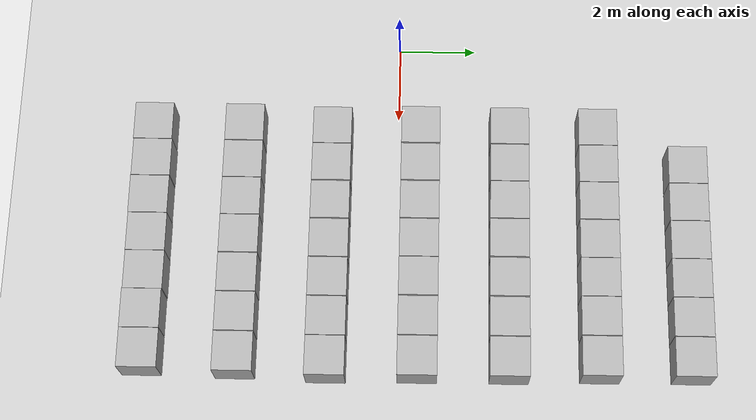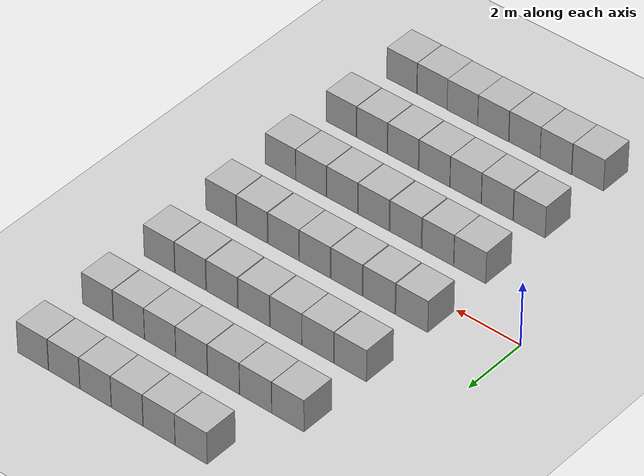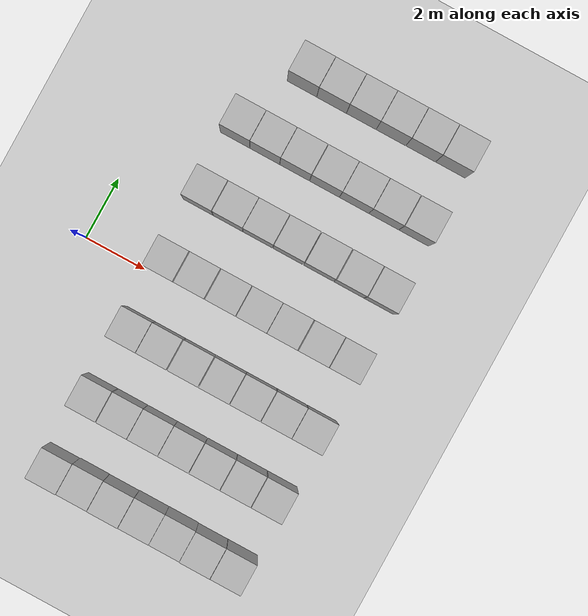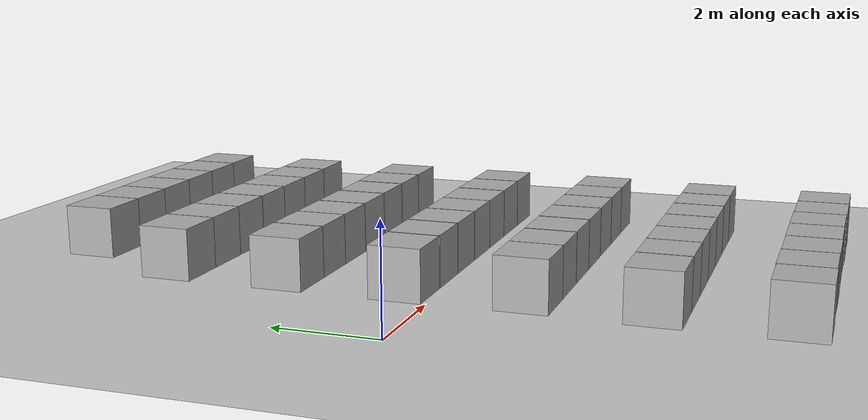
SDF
<sdf version="1.10">
 <world name="empty">
  <model name="ground_plane">
   <static>true</static>
   <link name="link">
    <collision name="collision">
     <geometry><plane><normal>0 0 1</normal><size>100 100</size></plane></geometry>
    </collision>
    <visual name="visual">
     <geometry><plane><normal>0 0 1</normal><size>100 100</size></plane></geometry>
     <material>
      <ambient>0.800000012 0.800000012 0.800000012 1</ambient>
      <diffuse>0.800000012 0.800000012 0.800000012 1</diffuse>
      <specular>0.800000012 0.800000012 0.800000012 1</specular>
     </material>
    </visual>
    <inertial>
     <mass>1</mass>
     <inertia><ixx>1</ixx><ixy>0</ixy><ixz>0</ixz><iyy>1</iyy><iyz>0</iyz><izz>1</izz></inertia>
    </inertial>
   </link>
  </model>
  <model name="box_0">
   <pose>2.5 2.8999999999999999 0.49999999990199806 6.1203827244439096e-21 -3.3876359505899643e-21 1.6466037992492553e-22</pose>
   <link name="box_link">
    <inertial>
     <inertia><ixx>0.16666</ixx><ixy>0</ixy><ixz>0</ixz><iyy>0.16666</iyy><iyz>0</iyz><izz>0.16666</izz></inertia>
     <mass>1</mass>
    </inertial>
    <collision name="box_collision"><geometry><box><size>1 1 1</size></box></geometry></collision>
    <visual name="box_visual">
     <geometry><box><size>1 1 1</size></box></geometry>
     <material>
      <ambient>0.300000012 0.300000012 0.300000012 1</ambient>
      <diffuse>0.699999988 0.699999988 0.699999988 1</diffuse>
      <specular>1 1 1 1</specular>
     </material>
    </visual>
   </link>
   <static>false</static>
  </model>
  <model name="box_1">
   <pose>2.5 0.58999999999999997 0.49999999990199806 8.7066809390667723e-22 -2.1285260495278108e-21 1.1545711030765614e-22</pose>
   <link name="box_link">
    <inertial>
     <inertia><ixx>0.16666</ixx><ixy>0</ixy><ixz>0</ixz><iyy>0.16666</iyy><iyz>0</iyz><izz>0.16666</izz></inertia>
     <mass>1</mass>
    </inertial>
    <collision name="box_collision"><geometry><box><size>1 1 1</size></box></geometry></collision>
    <visual name="box_visual">
     <geometry><box><size>1 1 1</size></box></geometry>
     <material>
      <ambient>0.300000012 0.300000012 0.300000012 1</ambient>
      <diffuse>0.699999988 0.699999988 0.699999988 1</diffuse>
      <specular>1 1 1 1</specular>
     </material>
    </visual>
   </link>
   <static>false</static>
  </model>
  <model name="box_2">
   <pose>3.52 2.8999999999999999 0.49999999990199806 -4.8768695265223027e-21 5.8225065261525486e-22 -7.5141929730115795e-25</pose>
   <link name="box_link">
    <inertial>
     <inertia><ixx>0.16666</ixx><ixy>0</ixy><ixz>0</ixz><iyy>0.16666</iyy><iyz>0</iyz><izz>0.16666</izz></inertia>
     <mass>1</mass>
    </inertial>
    <collision name="box_collision"><geometry><box><size>1 1 1</size></box></geometry></collision>
    <visual name="box_visual">
     <geometry><box><size>1 1 1</size></box></geometry>
     <material>
      <ambient>0.300000012 0.300000012 0.300000012 1</ambient>
      <diffuse>0.699999988 0.699999988 0.699999988 1</diffuse>
      <specular>1 1 1 1</specular>
     </material>
    </visual>
   </link>
   <static>false</static>
  </model>
  <model name="box_2_1">
   <pose>4.5300000000000002 2.8999999999999999 0.49999999990199806 4.2898201230764065e-21 -2.725349153175945e-21 -8.5990281335853726e-23</pose>
   <link name="box_link">
    <inertial>
     <inertia><ixx>0.16666</ixx><ixy>0</ixy><ixz>0</ixz><iyy>0.16666</iyy><iyz>0</iyz><izz>0.16666</izz></inertia>
     <mass>1</mass>
    </inertial>
    <collision name="box_collision"><geometry><box><size>1 1 1</size></box></geometry></collision>
    <visual name="box_visual">
     <geometry><box><size>1 1 1</size></box></geometry>
     <material>
      <ambient>0.300000012 0.300000012 0.300000012 1</ambient>
      <diffuse>0.699999988 0.699999988 0.699999988 1</diffuse>
      <specular>1 1 1 1</specular>
     </material>
    </visual>
   </link>
   <static>false</static>
  </model>
  <model name="box_3">
   <pose>5.5499999999999998 2.8999999999999999 0.49999999990199806 5.2887159057370552e-21 -3.6750628121331441e-21 -3.6849575540852575e-22</pose>
   <link name="box_link">
    <inertial>
     <inertia><ixx>0.16666</ixx><ixy>0</ixy><ixz>0</ixz><iyy>0.16666</iyy><iyz>0</iyz><izz>0.16666</izz></inertia>
     <mass>1</mass>
    </inertial>
    <collision name="box_collision"><geometry><box><size>1 1 1</size></box></geometry></collision>
    <visual name="box_visual">
     <geometry><box><size>1 1 1</size></box></geometry>
     <material>
      <ambient>0.300000012 0.300000012 0.300000012 1</ambient>
      <diffuse>0.699999988 0.699999988 0.699999988 1</diffuse>
      <specular>1 1 1 1</specular>
     </material>
    </visual>
   </link>
   <static>false</static>
  </model>
  <model name="box_4">
   <pose>6.5800000000000001 2.8999999999999999 0.49999999990199806 -2.4660929546317553e-21 -9.2821509608650037e-21 -8.2239956414060735e-22</pose>
   <link name="box_link">
    <inertial>
     <inertia><ixx>0.16666</ixx><ixy>0</ixy><ixz>0</ixz><iyy>0.16666</iyy><iyz>0</iyz><izz>0.16666</izz></inertia>
     <mass>1</mass>
    </inertial>
    <collision name="box_collision"><geometry><box><size>1 1 1</size></box></geometry></collision>
    <visual name="box_visual">
     <geometry><box><size>1 1 1</size></box></geometry>
     <material>
      <ambient>0.300000012 0.300000012 0.300000012 1</ambient>
      <diffuse>0.699999988 0.699999988 0.699999988 1</diffuse>
      <specular>1 1 1 1</specular>
     </material>
    </visual>
   </link>
   <static>false</static>
  </model>
  <model name="box_5">
   <pose>7.6100000000000003 2.8999999999999999 0.49999999990199806 2.6876898212229476e-22 -1.2926105225332566e-21 -3.0142882185984917e-22</pose>
   <link name="box_link">
    <inertial>
     <inertia><ixx>0.16666</ixx><ixy>0</ixy><ixz>0</ixz><iyy>0.16666</iyy><iyz>0</iyz><izz>0.16666</izz></inertia>
     <mass>1</mass>
    </inertial>
    <collision name="box_collision"><geometry><box><size>1 1 1</size></box></geometry></collision>
    <visual name="box_visual">
     <geometry><box><size>1 1 1</size></box></geometry>
     <material>
      <ambient>0.300000012 0.300000012 0.300000012 1</ambient>
      <diffuse>0.699999988 0.699999988 0.699999988 1</diffuse>
      <specular>1 1 1 1</specular>
     </material>
    </visual>
   </link>
   <static>false</static>
  </model>
  <model name="box_6">
   <pose>8.6300000000000008 2.8999999999999999 0.49999999990199806 1.9043130121824857e-21 8.8559634418370129e-21 -4.3486632422214666e-23</pose>
   <link name="box_link">
    <inertial>
     <inertia><ixx>0.16666</ixx><ixy>0</ixy><ixz>0</ixz><iyy>0.16666</iyy><iyz>0</iyz><izz>0.16666</izz></inertia>
     <mass>1</mass>
    </inertial>
    <collision name="box_collision"><geometry><box><size>1 1 1</size></box></geometry></collision>
    <visual name="box_visual">
     <geometry><box><size>1 1 1</size></box></geometry>
     <material>
      <ambient>0.300000012 0.300000012 0.300000012 1</ambient>
      <diffuse>0.699999988 0.699999988 0.699999988 1</diffuse>
      <specular>1 1 1 1</specular>
     </material>
    </visual>
   </link>
   <static>false</static>
  </model>
  <model name="box_7">
   <pose>3.5299999999999998 0.58999999999999986 0.49999999990199806 -9.9876155932578515e-22 -3.3279681376680838e-21 1.0376628418611865e-22</pose>
   <link name="box_link">
    <inertial>
     <inertia><ixx>0.16666</ixx><ixy>0</ixy><ixz>0</ixz><iyy>0.16666</iyy><iyz>0</iyz><izz>0.16666</izz></inertia>
     <mass>1</mass>
    </inertial>
    <collision name="box_collision"><geometry><box><size>1 1 1</size></box></geometry></collision>
    <visual name="box_visual">
     <geometry><box><size>1 1 1</size></box></geometry>
     <material>
      <ambient>0.300000012 0.300000012 0.300000012 1</ambient>
      <diffuse>0.699999988 0.699999988 0.699999988 1</diffuse>
      <specular>1 1 1 1</specular>
     </material>
    </visual>
   </link>
   <static>false</static>
  </model>
  <model name="box_8">
   <pose>4.5599999999999996 0.58999999999999986 0.49999999990199806 8.0483898771128715e-22 -1.9664387365039291e-21 2.629122359092698e-22</pose>
   <link name="box_link">
    <inertial>
     <inertia><ixx>0.16666</ixx><ixy>0</ixy><ixz>0</ixz><iyy>0.16666</iyy><iyz>0</iyz><izz>0.16666</izz></inertia>
     <mass>1</mass>
    </inertial>
    <collision name="box_collision"><geometry><box><size>1 1 1</size></box></geometry></collision>
    <visual name="box_visual">
     <geometry><box><size>1 1 1</size></box></geometry>
     <material>
      <ambient>0.300000012 0.300000012 0.300000012 1</ambient>
      <diffuse>0.699999988 0.699999988 0.699999988 1</diffuse>
      <specular>1 1 1 1</specular>
     </material>
    </visual>
   </link>
   <static>false</static>
  </model>
  <model name="box_9">
   <pose>5.5800000000000001 0.59000000000000008 0.49999999990199806 -3.7574526127707067e-21 -2.7620760771008262e-21 -5.0334515553601907e-22</pose>
   <link name="box_link">
    <inertial>
     <inertia><ixx>0.16666</ixx><ixy>0</ixy><ixz>0</ixz><iyy>0.16666</iyy><iyz>0</iyz><izz>0.16666</izz></inertia>
     <mass>1</mass>
    </inertial>
    <collision name="box_collision"><geometry><box><size>1 1 1</size></box></geometry></collision>
    <visual name="box_visual">
     <geometry><box><size>1 1 1</size></box></geometry>
     <material>
      <ambient>0.300000012 0.300000012 0.300000012 1</ambient>
      <diffuse>0.699999988 0.699999988 0.699999988 1</diffuse>
      <specular>1 1 1 1</specular>
     </material>
    </visual>
   </link>
   <static>false</static>
  </model>
  <model name="box_10">
   <pose>6.5899999999999999 0.58999999999999986 0.49999999990199806 1.8321338117819254e-21 -8.3511235812931385e-22 -1.072067985728647e-22</pose>
   <link name="box_link">
    <inertial>
     <inertia><ixx>0.16666</ixx><ixy>0</ixy><ixz>0</ixz><iyy>0.16666</iyy><iyz>0</iyz><izz>0.16666</izz></inertia>
     <mass>1</mass>
    </inertial>
    <collision name="box_collision"><geometry><box><size>1 1 1</size></box></geometry></collision>
    <visual name="box_visual">
     <geometry><box><size>1 1 1</size></box></geometry>
     <material>
      <ambient>0.300000012 0.300000012 0.300000012 1</ambient>
      <diffuse>0.699999988 0.699999988 0.699999988 1</diffuse>
      <specular>1 1 1 1</specular>
     </material>
    </visual>
   </link>
   <static>false</static>
  </model>
  <model name="box_11">
   <pose>7.6200000000000001 0.58999999999999986 0.49999999990199806 -9.8022300570000345e-22 -1.2140919249779047e-21 -6.2576101818199715e-22</pose>
   <link name="box_link">
    <inertial>
     <inertia><ixx>0.16666</ixx><ixy>0</ixy><ixz>0</ixz><iyy>0.16666</iyy><iyz>0</iyz><izz>0.16666</izz></inertia>
     <mass>1</mass>
    </inertial>
    <collision name="box_collision"><geometry><box><size>1 1 1</size></box></geometry></collision>
    <visual name="box_visual">
     <geometry><box><size>1 1 1</size></box></geometry>
     <material>
      <ambient>0.300000012 0.300000012 0.300000012 1</ambient>
      <diffuse>0.699999988 0.699999988 0.699999988 1</diffuse>
      <specular>1 1 1 1</specular>
     </material>
    </visual>
   </link>
   <static>false</static>
  </model>
  <model name="box_12">
   <pose>8.6400000000000006 0.58999999999999986 0.49999999990199806 1.1685815462847036e-21 3.8251662251648546e-22 1.9598060917783797e-23</pose>
   <link name="box_link">
    <inertial>
     <inertia><ixx>0.16666</ixx><ixy>0</ixy><ixz>0</ixz><iyy>0.16666</iyy><iyz>0</iyz><izz>0.16666</izz></inertia>
     <mass>1</mass>
    </inertial>
    <collision name="box_collision"><geometry><box><size>1 1 1</size></box></geometry></collision>
    <visual name="box_visual">
     <geometry><box><size>1 1 1</size></box></geometry>
     <material>
      <ambient>0.300000012 0.300000012 0.300000012 1</ambient>
      <diffuse>0.699999988 0.699999988 0.699999988 1</diffuse>
      <specular>1 1 1 1</specular>
     </material>
    </visual>
   </link>
   <static>false</static>
  </model>
  <model name="box_13">
   <pose>2.5499999999999998 -1.71 0.5 1.6937504338995532e-43 0 0</pose>
   <link name="box_link">
    <inertial>
     <inertia><ixx>0.16666</ixx><ixy>0</ixy><ixz>0</ixz><iyy>0.16666</iyy><iyz>0</iyz><izz>0.16666</izz></inertia>
     <mass>1</mass>
    </inertial>
    <collision name="box_collision"><geometry><box><size>1 1 1</size></box></geometry></collision>
    <visual name="box_visual">
     <geometry><box><size>1 1 1</size></box></geometry>
     <material>
      <ambient>0.300000012 0.300000012 0.300000012 1</ambient>
      <diffuse>0.699999988 0.699999988 0.699999988 1</diffuse>
      <specular>1 1 1 1</specular>
     </material>
    </visual>
   </link>
   <static>false</static>
  </model>
  <model name="box_14">
   <pose>3.5600000000000001 -1.71 0.5 1.6937504338995532e-43 0 0</pose>
   <link name="box_link">
    <inertial>
     <inertia><ixx>0.16666</ixx><ixy>0</ixy><ixz>0</ixz><iyy>0.16666</iyy><iyz>0</iyz><izz>0.16666</izz></inertia>
     <mass>1</mass>
    </inertial>
    <collision name="box_collision"><geometry><box><size>1 1 1</size></box></geometry></collision>
    <visual name="box_visual">
     <geometry><box><size>1 1 1</size></box></geometry>
     <material>
      <ambient>0.300000012 0.300000012 0.300000012 1</ambient>
      <diffuse>0.699999988 0.699999988 0.699999988 1</diffuse>
      <specular>1 1 1 1</specular>
     </material>
    </visual>
   </link>
   <static>false</static>
  </model>
  <model name="box_15">
   <pose>4.5899999999999999 -1.71 0.5 1.6937504338995532e-43 0 0</pose>
   <link name="box_link">
    <inertial>
     <inertia><ixx>0.16666</ixx><ixy>0</ixy><ixz>0</ixz><iyy>0.16666</iyy><iyz>0</iyz><izz>0.16666</izz></inertia>
     <mass>1</mass>
    </inertial>
    <collision name="box_collision"><geometry><box><size>1 1 1</size></box></geometry></collision>
    <visual name="box_visual">
     <geometry><box><size>1 1 1</size></box></geometry>
     <material>
      <ambient>0.300000012 0.300000012 0.300000012 1</ambient>
      <diffuse>0.699999988 0.699999988 0.699999988 1</diffuse>
      <specular>1 1 1 1</specular>
     </material>
    </visual>
   </link>
   <static>false</static>
  </model>
  <model name="box_16">
   <pose>5.6200000000000001 -1.71 0.5 1.6937504338995532e-43 0 0</pose>
   <link name="box_link">
    <inertial>
     <inertia><ixx>0.16666</ixx><ixy>0</ixy><ixz>0</ixz><iyy>0.16666</iyy><iyz>0</iyz><izz>0.16666</izz></inertia>
     <mass>1</mass>
    </inertial>
    <collision name="box_collision"><geometry><box><size>1 1 1</size></box></geometry></collision>
    <visual name="box_visual">
     <geometry><box><size>1 1 1</size></box></geometry>
     <material>
      <ambient>0.300000012 0.300000012 0.300000012 1</ambient>
      <diffuse>0.699999988 0.699999988 0.699999988 1</diffuse>
      <specular>1 1 1 1</specular>
     </material>
    </visual>
   </link>
   <static>false</static>
  </model>
  <model name="box_17">
   <pose>6.6399999999999997 -1.71 0.5 1.6937504338995532e-43 0 0</pose>
   <link name="box_link">
    <inertial>
     <inertia><ixx>0.16666</ixx><ixy>0</ixy><ixz>0</ixz><iyy>0.16666</iyy><iyz>0</iyz><izz>0.16666</izz></inertia>
     <mass>1</mass>
    </inertial>
    <collision name="box_collision"><geometry><box><size>1 1 1</size></box></geometry></collision>
    <visual name="box_visual">
     <geometry><box><size>1 1 1</size></box></geometry>
     <material>
      <ambient>0.300000012 0.300000012 0.300000012 1</ambient>
      <diffuse>0.699999988 0.699999988 0.699999988 1</diffuse>
      <specular>1 1 1 1</specular>
     </material>
    </visual>
   </link>
   <static>false</static>
  </model>
  <model name="box_18">
   <pose>7.6600000000000001 -1.71 0.5 3.1892209020670102e-43 0 0</pose>
   <link name="box_link">
    <inertial>
     <inertia><ixx>0.16666</ixx><ixy>0</ixy><ixz>0</ixz><iyy>0.16666</iyy><iyz>0</iyz><izz>0.16666</izz></inertia>
     <mass>1</mass>
    </inertial>
    <collision name="box_collision"><geometry><box><size>1 1 1</size></box></geometry></collision>
    <visual name="box_visual">
     <geometry><box><size>1 1 1</size></box></geometry>
     <material>
      <ambient>0.300000012 0.300000012 0.300000012 1</ambient>
      <diffuse>0.699999988 0.699999988 0.699999988 1</diffuse>
      <specular>1 1 1 1</specular>
     </material>
    </visual>
   </link>
   <static>false</static>
  </model>
  <model name="box_19">
   <pose>8.6699999999999999 -1.71 0.5 1.6937504338995532e-43 0 0</pose>
   <link name="box_link">
    <inertial>
     <inertia><ixx>0.16666</ixx><ixy>0</ixy><ixz>0</ixz><iyy>0.16666</iyy><iyz>0</iyz><izz>0.16666</izz></inertia>
     <mass>1</mass>
    </inertial>
    <collision name="box_collision"><geometry><box><size>1 1 1</size></box></geometry></collision>
    <visual name="box_visual">
     <geometry><box><size>1 1 1</size></box></geometry>
     <material>
      <ambient>0.300000012 0.300000012 0.300000012 1</ambient>
      <diffuse>0.699999988 0.699999988 0.699999988 1</diffuse>
      <specular>1 1 1 1</specular>
     </material>
    </visual>
   </link>
   <static>false</static>
  </model>
  <model name="box_20">
   <pose>2.5 -4 0.5 -4.0097937125292166e-44 0 0</pose>
   <link name="box_link">
    <inertial>
     <inertia><ixx>0.16666</ixx><ixy>0</ixy><ixz>0</ixz><iyy>0.16666</iyy><iyz>0</iyz><izz>0.16666</izz></inertia>
     <mass>1</mass>
    </inertial>
    <collision name="box_collision"><geometry><box><size>1 1 1</size></box></geometry></collision>
    <visual name="box_visual">
     <geometry><box><size>1 1 1</size></box></geometry>
     <material>
      <ambient>0.300000012 0.300000012 0.300000012 1</ambient>
      <diffuse>0.699999988 0.699999988 0.699999988 1</diffuse>
      <specular>1 1 1 1</specular>
     </material>
    </visual>
   </link>
   <static>false</static>
  </model>
  <model name="box_21">
   <pose>3.52 -4 0.5 1.6937504338995532e-43 0 0</pose>
   <link name="box_link">
    <inertial>
     <inertia><ixx>0.16666</ixx><ixy>0</ixy><ixz>0</ixz><iyy>0.16666</iyy><iyz>0</iyz><izz>0.16666</izz></inertia>
     <mass>1</mass>
    </inertial>
    <collision name="box_collision"><geometry><box><size>1 1 1</size></box></geometry></collision>
    <visual name="box_visual">
     <geometry><box><size>1 1 1</size></box></geometry>
     <material>
      <ambient>0.300000012 0.300000012 0.300000012 1</ambient>
      <diffuse>0.699999988 0.699999988 0.699999988 1</diffuse>
      <specular>1 1 1 1</specular>
     </material>
    </visual>
   </link>
   <static>false</static>
  </model>
  <model name="box_22">
   <pose>4.5300000000000002 -4 0.5 1.6937504338995532e-43 0 0</pose>
   <link name="box_link">
    <inertial>
     <inertia><ixx>0.16666</ixx><ixy>0</ixy><ixz>0</ixz><iyy>0.16666</iyy><iyz>0</iyz><izz>0.16666</izz></inertia>
     <mass>1</mass>
    </inertial>
    <collision name="box_collision"><geometry><box><size>1 1 1</size></box></geometry></collision>
    <visual name="box_visual">
     <geometry><box><size>1 1 1</size></box></geometry>
     <material>
      <ambient>0.300000012 0.300000012 0.300000012 1</ambient>
      <diffuse>0.699999988 0.699999988 0.699999988 1</diffuse>
      <specular>1 1 1 1</specular>
     </material>
    </visual>
   </link>
   <static>false</static>
  </model>
  <model name="box_23">
   <pose>5.54 -4 0.5 -4.0097937125292166e-44 0 0</pose>
   <link name="box_link">
    <inertial>
     <inertia><ixx>0.16666</ixx><ixy>0</ixy><ixz>0</ixz><iyy>0.16666</iyy><iyz>0</iyz><izz>0.16666</izz></inertia>
     <mass>1</mass>
    </inertial>
    <collision name="box_collision"><geometry><box><size>1 1 1</size></box></geometry></collision>
    <visual name="box_visual">
     <geometry><box><size>1 1 1</size></box></geometry>
     <material>
      <ambient>0.300000012 0.300000012 0.300000012 1</ambient>
      <diffuse>0.699999988 0.699999988 0.699999988 1</diffuse>
      <specular>1 1 1 1</specular>
     </material>
    </visual>
   </link>
   <static>false</static>
  </model>
  <model name="box_24">
   <pose>6.5599999999999996 -4 0.5 5.5058610233241208e-44 0 0</pose>
   <link name="box_link">
    <inertial>
     <inertia><ixx>0.16666</ixx><ixy>0</ixy><ixz>0</ixz><iyy>0.16666</iyy><iyz>0</iyz><izz>0.16666</izz></inertia>
     <mass>1</mass>
    </inertial>
    <collision name="box_collision"><geometry><box><size>1 1 1</size></box></geometry></collision>
    <visual name="box_visual">
     <geometry><box><size>1 1 1</size></box></geometry>
     <material>
      <ambient>0.300000012 0.300000012 0.300000012 1</ambient>
      <diffuse>0.699999988 0.699999988 0.699999988 1</diffuse>
      <specular>1 1 1 1</specular>
     </material>
    </visual>
   </link>
   <static>false</static>
  </model>
  <model name="box_25">
   <pose>7.5800000000000001 -4 0.5 0 0 0</pose>
   <link name="box_link">
    <inertial>
     <inertia><ixx>0.16666</ixx><ixy>0</ixy><ixz>0</ixz><iyy>0.16666</iyy><iyz>0</iyz><izz>0.16666</izz></inertia>
     <mass>1</mass>
    </inertial>
    <collision name="box_collision"><geometry><box><size>1 1 1</size></box></geometry></collision>
    <visual name="box_visual">
     <geometry><box><size>1 1 1</size></box></geometry>
     <material>
      <ambient>0.300000012 0.300000012 0.300000012 1</ambient>
      <diffuse>0.699999988 0.699999988 0.699999988 1</diffuse>
      <specular>1 1 1 1</specular>
     </material>
    </visual>
   </link>
   <static>false</static>
  </model>
  <model name="box_26">
   <pose>8.5999999999999996 -4 0.5 1.6937504338995532e-43 0 0</pose>
   <link name="box_link">
    <inertial>
     <inertia><ixx>0.16666</ixx><ixy>0</ixy><ixz>0</ixz><iyy>0.16666</iyy><iyz>0</iyz><izz>0.16666</izz></inertia>
     <mass>1</mass>
    </inertial>
    <collision name="box_collision"><geometry><box><size>1 1 1</size></box></geometry></collision>
    <visual name="box_visual">
     <geometry><box><size>1 1 1</size></box></geometry>
     <material>
      <ambient>0.300000012 0.300000012 0.300000012 1</ambient>
      <diffuse>0.699999988 0.699999988 0.699999988 1</diffuse>
      <specular>1 1 1 1</specular>
     </material>
    </visual>
   </link>
   <static>false</static>
  </model>
  <model name="box_27">
   <pose>2.5 5.1900000000000004 0.49999999990199806 1.1969889062632419e-21 -2.3994643682355624e-21 -2.0346020328214015e-22</pose>
   <link name="box_link">
    <inertial>
     <inertia><ixx>0.16666</ixx><ixy>0</ixy><ixz>0</ixz><iyy>0.16666</iyy><iyz>0</iyz><izz>0.16666</izz></inertia>
     <mass>1</mass>
    </inertial>
    <collision name="box_collision"><geometry><box><size>1 1 1</size></box></geometry></collision>
    <visual name="box_visual">
     <geometry><box><size>1 1 1</size></box></geometry>
     <material>
      <ambient>0.300000012 0.300000012 0.300000012 1</ambient>
      <diffuse>0.699999988 0.699999988 0.699999988 1</diffuse>
      <specular>1 1 1 1</specular>
     </material>
    </visual>
   </link>
   <static>false</static>
  </model>
  <model name="box_28">
   <pose>3.5099999999999998 5.1900000000000004 0.49999999990199806 2.2166818924739801e-21 -3.9964851649350918e-21 -2.8454415990004946e-22</pose>
   <link name="box_link">
    <inertial>
     <inertia><ixx>0.16666</ixx><ixy>0</ixy><ixz>0</ixz><iyy>0.16666</iyy><iyz>0</iyz><izz>0.16666</izz></inertia>
     <mass>1</mass>
    </inertial>
    <collision name="box_collision"><geometry><box><size>1 1 1</size></box></geometry></collision>
    <visual name="box_visual">
     <geometry><box><size>1 1 1</size></box></geometry>
     <material>
      <ambient>0.300000012 0.300000012 0.300000012 1</ambient>
      <diffuse>0.699999988 0.699999988 0.699999988 1</diffuse>
      <specular>1 1 1 1</specular>
     </material>
    </visual>
   </link>
   <static>false</static>
  </model>
  <model name="box_29">
   <pose>4.5199999999999996 5.1900000000000004 0.49999999990199806 1.9003650826657693e-21 -3.9955080593532145e-21 -2.0083520017725128e-22</pose>
   <link name="box_link">
    <inertial>
     <inertia><ixx>0.16666</ixx><ixy>0</ixy><ixz>0</ixz><iyy>0.16666</iyy><iyz>0</iyz><izz>0.16666</izz></inertia>
     <mass>1</mass>
    </inertial>
    <collision name="box_collision"><geometry><box><size>1 1 1</size></box></geometry></collision>
    <visual name="box_visual">
     <geometry><box><size>1 1 1</size></box></geometry>
     <material>
      <ambient>0.300000012 0.300000012 0.300000012 1</ambient>
      <diffuse>0.699999988 0.699999988 0.699999988 1</diffuse>
      <specular>1 1 1 1</specular>
     </material>
    </visual>
   </link>
   <static>false</static>
  </model>
  <model name="box_30">
   <pose>5.54 5.1900000000000004 0.49999999990199806 5.9551544824185483e-22 -2.0198700582976372e-21 1.1317465050277089e-22</pose>
   <link name="box_link">
    <inertial>
     <inertia><ixx>0.16666</ixx><ixy>0</ixy><ixz>0</ixz><iyy>0.16666</iyy><iyz>0</iyz><izz>0.16666</izz></inertia>
     <mass>1</mass>
    </inertial>
    <collision name="box_collision"><geometry><box><size>1 1 1</size></box></geometry></collision>
    <visual name="box_visual">
     <geometry><box><size>1 1 1</size></box></geometry>
     <material>
      <ambient>0.300000012 0.300000012 0.300000012 1</ambient>
      <diffuse>0.699999988 0.699999988 0.699999988 1</diffuse>
      <specular>1 1 1 1</specular>
     </material>
    </visual>
   </link>
   <static>false</static>
  </model>
  <model name="box_31">
   <pose>6.5499999999999998 5.1900000000000004 0.49999999990199806 4.1068825242664722e-21 -4.6250560261045752e-21 -1.0639733848401009e-22</pose>
   <link name="box_link">
    <inertial>
     <inertia><ixx>0.16666</ixx><ixy>0</ixy><ixz>0</ixz><iyy>0.16666</iyy><iyz>0</iyz><izz>0.16666</izz></inertia>
     <mass>1</mass>
    </inertial>
    <collision name="box_collision"><geometry><box><size>1 1 1</size></box></geometry></collision>
    <visual name="box_visual">
     <geometry><box><size>1 1 1</size></box></geometry>
     <material>
      <ambient>0.300000012 0.300000012 0.300000012 1</ambient>
      <diffuse>0.699999988 0.699999988 0.699999988 1</diffuse>
      <specular>1 1 1 1</specular>
     </material>
    </visual>
   </link>
   <static>false</static>
  </model>
  <model name="box_32">
   <pose>7.5599999999999996 5.1900000000000004 0.49999999990199806 1.1033215412143612e-21 -1.9986045541170091e-21 1.2186978225147396e-22</pose>
   <link name="box_link">
    <inertial>
     <inertia><ixx>0.16666</ixx><ixy>0</ixy><ixz>0</ixz><iyy>0.16666</iyy><iyz>0</iyz><izz>0.16666</izz></inertia>
     <mass>1</mass>
    </inertial>
    <collision name="box_collision"><geometry><box><size>1 1 1</size></box></geometry></collision>
    <visual name="box_visual">
     <geometry><box><size>1 1 1</size></box></geometry>
     <material>
      <ambient>0.300000012 0.300000012 0.300000012 1</ambient>
      <diffuse>0.699999988 0.699999988 0.699999988 1</diffuse>
      <specular>1 1 1 1</specular>
     </material>
    </visual>
   </link>
   <static>false</static>
  </model>
  <model name="box_33">
   <pose>8.5800000000000001 5.1900000000000004 0.49999999990199806 1.238854400850552e-21 -4.5157620254319641e-21 -3.3539173515085679e-22</pose>
   <link name="box_link">
    <inertial>
     <inertia><ixx>0.16666</ixx><ixy>0</ixy><ixz>0</ixz><iyy>0.16666</iyy><iyz>0</iyz><izz>0.16666</izz></inertia>
     <mass>1</mass>
    </inertial>
    <collision name="box_collision"><geometry><box><size>1 1 1</size></box></geometry></collision>
    <visual name="box_visual">
     <geometry><box><size>1 1 1</size></box></geometry>
     <material>
      <ambient>0.300000012 0.300000012 0.300000012 1</ambient>
      <diffuse>0.699999988 0.699999988 0.699999988 1</diffuse>
      <specular>1 1 1 1</specular>
     </material>
    </visual>
   </link>
   <static>false</static>
  </model>
  <model name="box_35">
   <pose>3.5087299999999999 7.4916299999999998 0.49999999990199806 6.2287739151293738e-22 9.3279666454713669e-22 -3.6315533669320137e-22</pose>
   <link name="box_link">
    <inertial>
     <inertia><ixx>0.16666</ixx><ixy>0</ixy><ixz>0</ixz><iyy>0.16666</iyy><iyz>0</iyz><izz>0.16666</izz></inertia>
     <mass>1</mass>
    </inertial>
    <collision name="box_collision"><geometry><box><size>1 1 1</size></box></geometry></collision>
    <visual name="box_visual">
     <geometry><box><size>1 1 1</size></box></geometry>
     <material>
      <ambient>0.300000012 0.300000012 0.300000012 1</ambient>
      <diffuse>0.699999988 0.699999988 0.699999988 1</diffuse>
      <specular>1 1 1 1</specular>
     </material>
    </visual>
   </link>
   <static>false</static>
  </model>
  <model name="box_36">
   <pose>4.5188100000000002 7.4887300000000003 0.49999999990199806 6.2287739151293738e-22 9.3279666454713669e-22 -3.6315533669320137e-22</pose>
   <link name="box_link">
    <inertial>
     <inertia><ixx>0.16666</ixx><ixy>0</ixy><ixz>0</ixz><iyy>0.16666</iyy><iyz>0</iyz><izz>0.16666</izz></inertia>
     <mass>1</mass>
    </inertial>
    <collision name="box_collision"><geometry><box><size>1 1 1</size></box></geometry></collision>
    <visual name="box_visual">
     <geometry><box><size>1 1 1</size></box></geometry>
     <material>
      <ambient>0.300000012 0.300000012 0.300000012 1</ambient>
      <diffuse>0.699999988 0.699999988 0.699999988 1</diffuse>
      <specular>1 1 1 1</specular>
     </material>
    </visual>
   </link>
   <static>false</static>
  </model>
  <model name="box_37">
   <pose>5.5303100000000001 7.4918100000000001 0.49999999990199806 6.2287739151293738e-22 9.3279666454713669e-22 -3.6315533669320137e-22</pose>
   <link name="box_link">
    <inertial>
     <inertia><ixx>0.16666</ixx><ixy>0</ixy><ixz>0</ixz><iyy>0.16666</iyy><iyz>0</iyz><izz>0.16666</izz></inertia>
     <mass>1</mass>
    </inertial>
    <collision name="box_collision"><geometry><box><size>1 1 1</size></box></geometry></collision>
    <visual name="box_visual">
     <geometry><box><size>1 1 1</size></box></geometry>
     <material>
      <ambient>0.300000012 0.300000012 0.300000012 1</ambient>
      <diffuse>0.699999988 0.699999988 0.699999988 1</diffuse>
      <specular>1 1 1 1</specular>
     </material>
    </visual>
   </link>
   <static>false</static>
  </model>
  <model name="box_38">
   <pose>6.5403799999999999 7.4937399999999998 0.49999999990199806 6.2287739151293738e-22 9.3279666454713669e-22 -3.6315533669320137e-22</pose>
   <link name="box_link">
    <inertial>
     <inertia><ixx>0.16666</ixx><ixy>0</ixy><ixz>0</ixz><iyy>0.16666</iyy><iyz>0</iyz><izz>0.16666</izz></inertia>
     <mass>1</mass>
    </inertial>
    <collision name="box_collision"><geometry><box><size>1 1 1</size></box></geometry></collision>
    <visual name="box_visual">
     <geometry><box><size>1 1 1</size></box></geometry>
     <material>
      <ambient>0.300000012 0.300000012 0.300000012 1</ambient>
      <diffuse>0.699999988 0.699999988 0.699999988 1</diffuse>
      <specular>1 1 1 1</specular>
     </material>
    </visual>
   </link>
   <static>false</static>
  </model>
  <model name="box_39">
   <pose>7.5513199999999996 7.4974400000000001 0.49999999990199806 -2.5397394976504581e-21 1.8424908921771544e-21 -3.4618579832419256e-22</pose>
   <link name="box_link">
    <inertial>
     <inertia><ixx>0.16666</ixx><ixy>0</ixy><ixz>0</ixz><iyy>0.16666</iyy><iyz>0</iyz><izz>0.16666</izz></inertia>
     <mass>1</mass>
    </inertial>
    <collision name="box_collision"><geometry><box><size>1 1 1</size></box></geometry></collision>
    <visual name="box_visual">
     <geometry><box><size>1 1 1</size></box></geometry>
     <material>
      <ambient>0.300000012 0.300000012 0.300000012 1</ambient>
      <diffuse>0.699999988 0.699999988 0.699999988 1</diffuse>
      <specular>1 1 1 1</specular>
     </material>
    </visual>
   </link>
   <static>false</static>
  </model>
  <model name="box_40">
   <pose>8.5660299999999996 7.50075 0.49999999990199806 6.2287739151293738e-22 9.3279666454713669e-22 -3.6315533669320137e-22</pose>
   <link name="box_link">
    <inertial>
     <inertia><ixx>0.16666</ixx><ixy>0</ixy><ixz>0</ixz><iyy>0.16666</iyy><iyz>0</iyz><izz>0.16666</izz></inertia>
     <mass>1</mass>
    </inertial>
    <collision name="box_collision"><geometry><box><size>1 1 1</size></box></geometry></collision>
    <visual name="box_visual">
     <geometry><box><size>1 1 1</size></box></geometry>
     <material>
      <ambient>0.300000012 0.300000012 0.300000012 1</ambient>
      <diffuse>0.699999988 0.699999988 0.699999988 1</diffuse>
      <specular>1 1 1 1</specular>
     </material>
    </visual>
   </link>
   <static>false</static>
  </model>
  <model name="box">
   <pose>2.5016903877258301 -6.3694500923156738 0.5 0 0 0</pose>
   <link name="box_link">
    <inertial>
     <inertia><ixx>0.16666</ixx><ixy>0</ixy><ixz>0</ixz><iyy>0.16666</iyy><iyz>0</iyz><izz>0.16666</izz></inertia>
     <mass>1</mass>
    </inertial>
    <collision name="box_collision"><geometry><box><size>1 1 1</size></box></geometry></collision>
    <visual name="box_visual">
     <geometry><box><size>1 1 1</size></box></geometry>
     <material>
      <ambient>0.300000012 0.300000012 0.300000012 1</ambient>
      <diffuse>0.699999988 0.699999988 0.699999988 1</diffuse>
      <specular>1 1 1 1</specular>
     </material>
    </visual>
   </link>
   <static>false</static>
  </model>
  <model name="box_83">
   <pose>3.5100100040435791 -6.3568902015686035 0.5 0 0 0</pose>
   <link name="box_link">
    <inertial>
     <inertia><ixx>0.16666</ixx><ixy>0</ixy><ixz>0</ixz><iyy>0.16666</iyy><iyz>0</iyz><izz>0.16666</izz></inertia>
     <mass>1</mass>
    </inertial>
    <collision name="box_collision"><geometry><box><size>1 1 1</size></box></geometry></collision>
    <visual name="box_visual">
     <geometry><box><size>1 1 1</size></box></geometry>
     <material>
      <ambient>0.300000012 0.300000012 0.300000012 1</ambient>
      <diffuse>0.699999988 0.699999988 0.699999988 1</diffuse>
      <specular>1 1 1 1</specular>
     </material>
    </visual>
   </link>
   <static>false</static>
  </model>
  <model name="box_84">
   <pose>4.5194897651672363 -6.3625636100769043 0.5 0 0 0</pose>
   <link name="box_link">
    <inertial>
     <inertia><ixx>0.16666</ixx><ixy>0</ixy><ixz>0</ixz><iyy>0.16666</iyy><iyz>0</iyz><izz>0.16666</izz></inertia>
     <mass>1</mass>
    </inertial>
    <collision name="box_collision"><geometry><box><size>1 1 1</size></box></geometry></collision>
    <visual name="box_visual">
     <geometry><box><size>1 1 1</size></box></geometry>
     <material>
      <ambient>0.300000012 0.300000012 0.300000012 1</ambient>
      <diffuse>0.699999988 0.699999988 0.699999988 1</diffuse>
      <specular>1 1 1 1</specular>
     </material>
    </visual>
   </link>
   <static>false</static>
  </model>
  <model name="box_85">
   <pose>5.5296602249145508 -6.353489875793457 0.5 0 0 0</pose>
   <link name="box_link">
    <inertial>
     <inertia><ixx>0.16666</ixx><ixy>0</ixy><ixz>0</ixz><iyy>0.16666</iyy><iyz>0</iyz><izz>0.16666</izz></inertia>
     <mass>1</mass>
    </inertial>
    <collision name="box_collision"><geometry><box><size>1 1 1</size></box></geometry></collision>
    <visual name="box_visual">
     <geometry><box><size>1 1 1</size></box></geometry>
     <material>
      <ambient>0.300000012 0.300000012 0.300000012 1</ambient>
      <diffuse>0.699999988 0.699999988 0.699999988 1</diffuse>
      <specular>1 1 1 1</specular>
     </material>
    </visual>
   </link>
   <static>false</static>
  </model>
  <model name="box_86">
   <pose>6.5339698791503906 -6.3496899604797363 0.5 0 0 0</pose>
   <link name="box_link">
    <inertial>
     <inertia><ixx>0.16666</ixx><ixy>0</ixy><ixz>0</ixz><iyy>0.16666</iyy><iyz>0</iyz><izz>0.16666</izz></inertia>
     <mass>1</mass>
    </inertial>
    <collision name="box_collision"><geometry><box><size>1 1 1</size></box></geometry></collision>
    <visual name="box_visual">
     <geometry><box><size>1 1 1</size></box></geometry>
     <material>
      <ambient>0.300000012 0.300000012 0.300000012 1</ambient>
      <diffuse>0.699999988 0.699999988 0.699999988 1</diffuse>
      <specular>1 1 1 1</specular>
     </material>
    </visual>
   </link>
   <static>false</static>
  </model>
  <model name="box_87">
   <pose>7.5385499000549316 -6.3630695343017578 0.5 0 0 0</pose>
   <link name="box_link">
    <inertial>
     <inertia><ixx>0.16666</ixx><ixy>0</ixy><ixz>0</ixz><iyy>0.16666</iyy><iyz>0</iyz><izz>0.16666</izz></inertia>
     <mass>1</mass>
    </inertial>
    <collision name="box_collision"><geometry><box><size>1 1 1</size></box></geometry></collision>
    <visual name="box_visual">
     <geometry><box><size>1 1 1</size></box></geometry>
     <material>
      <ambient>0.300000012 0.300000012 0.300000012 1</ambient>
      <diffuse>0.699999988 0.699999988 0.699999988 1</diffuse>
      <specular>1 1 1 1</specular>
     </material>
    </visual>
   </link>
   <static>false</static>
  </model>
  <model name="box_88">
   <pose>8.5493028306568064 -6.3599546729019512 0.5 0 0 0</pose>
   <link name="box_link">
    <inertial>
     <inertia><ixx>0.16666</ixx><ixy>0</ixy><ixz>0</ixz><iyy>0.16666</iyy><iyz>0</iyz><izz>0.16666</izz></inertia>
     <mass>1</mass>
    </inertial>
    <collision name="box_collision"><geometry><box><size>1 1 1</size></box></geometry></collision>
    <visual name="box_visual">
     <geometry><box><size>1 1 1</size></box></geometry>
     <material>
      <ambient>0.300000012 0.300000012 0.300000012 1</ambient>
      <diffuse>0.699999988 0.699999988 0.699999988 1</diffuse>
      <specular>1 1 1 1</specular>
     </material>
    </visual>
   </link>
   <static>false</static>
  </model>
 </world>
</sdf>
